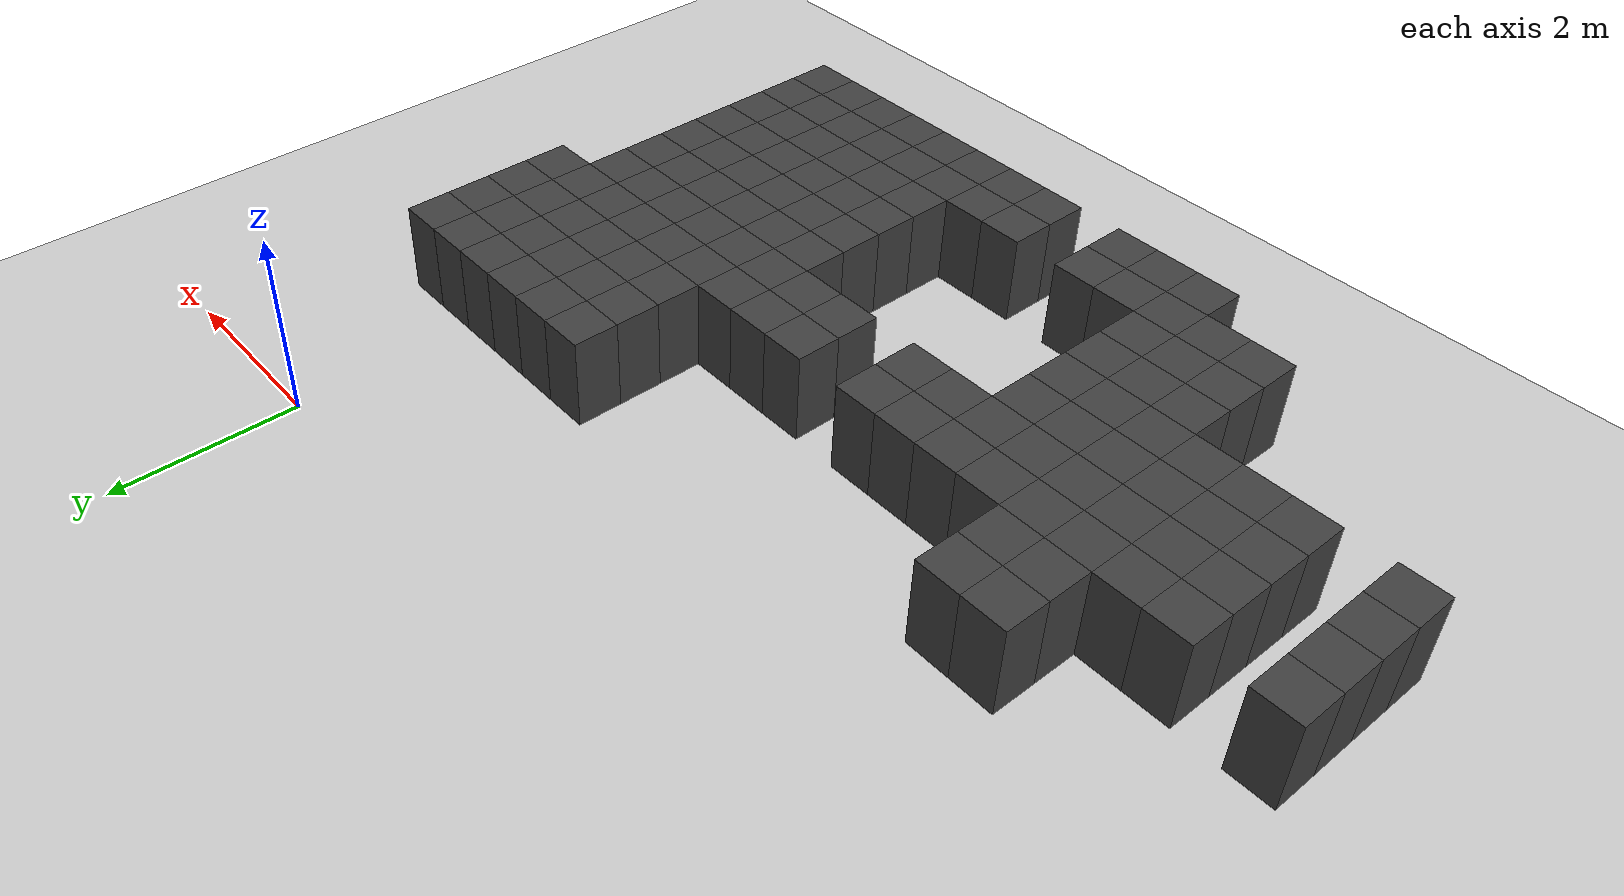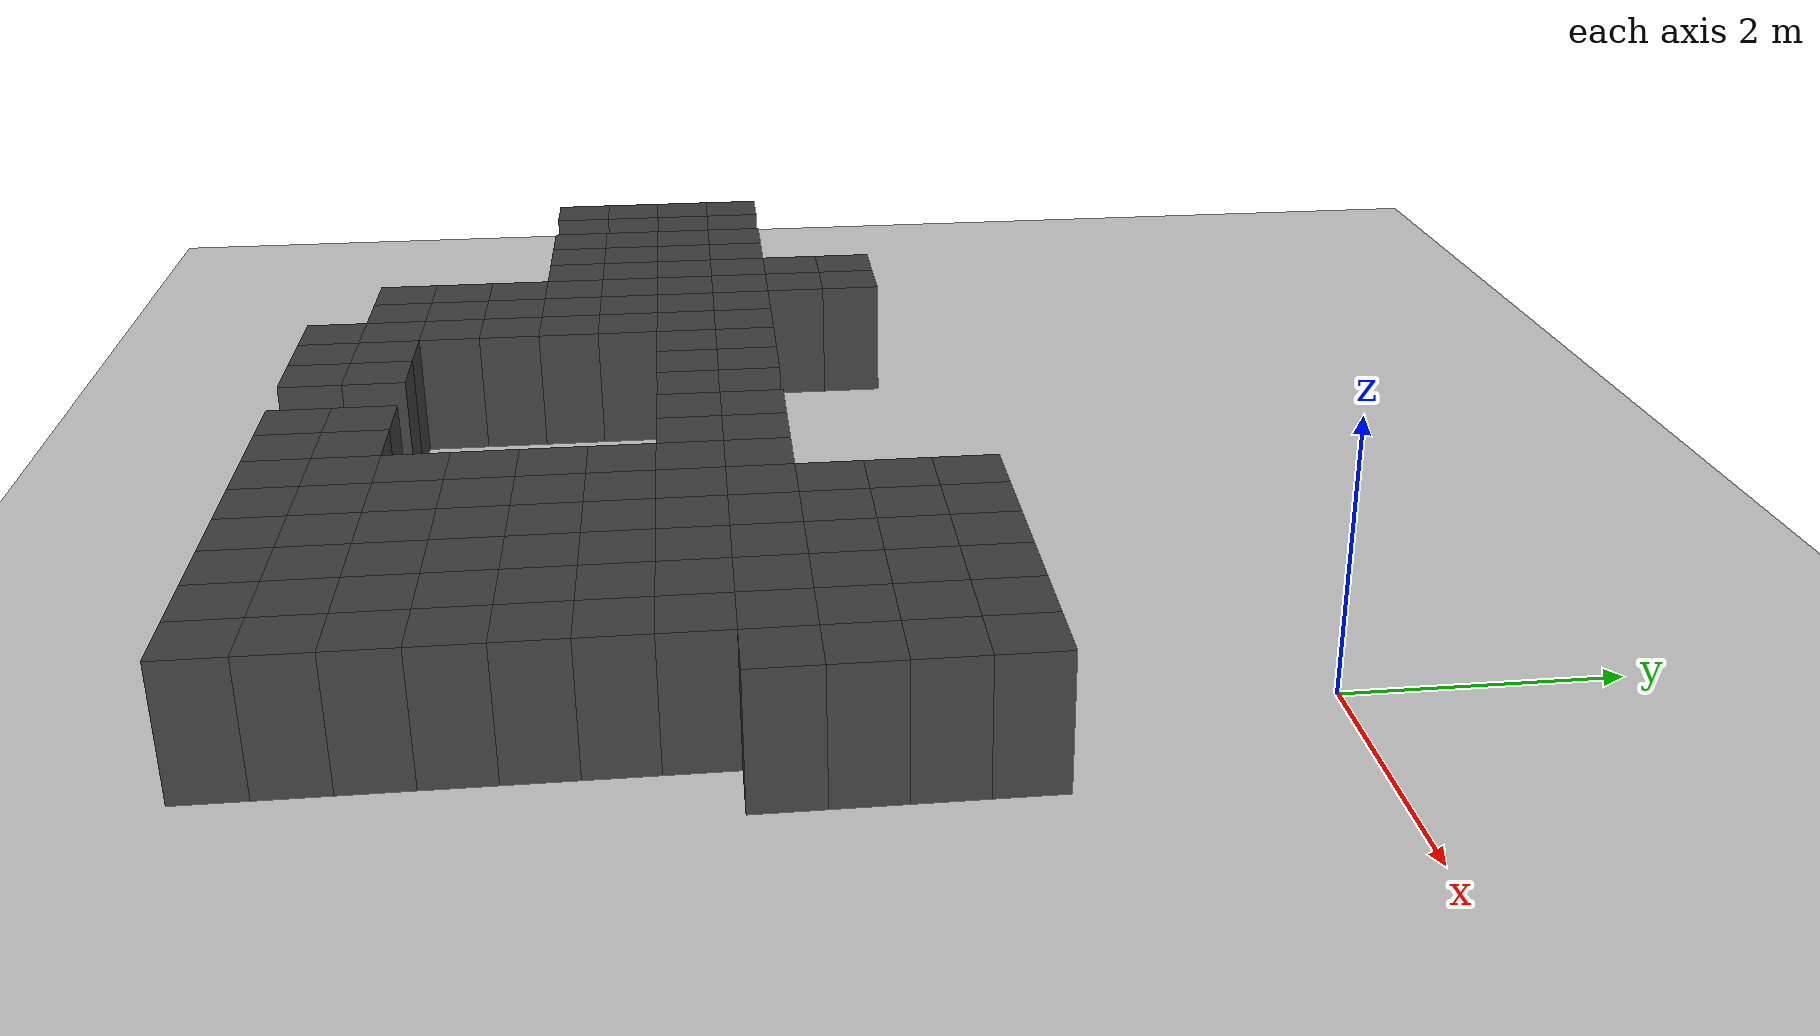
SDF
<sdf version="1.7">
 <world name="map_14495">
  <model name="ground_plane">
   <static>true</static>
   <link name="link">
    <collision name="collision">
     <geometry><plane><normal>0 0 1</normal><size>200 200</size></plane></geometry>
    </collision>
    <visual name="visual">
     <geometry><plane><normal>0 0 1</normal><size>200 200</size></plane></geometry>
     <material><ambient>0.8 0.8 0.8 1</ambient><diffuse>0.8 0.8 0.8 1</diffuse></material>
    </visual>
   </link>
  </model>
  <model name="maze_environment">
   <static>true</static>
   <link name="wall_1051">
    <pose>-1.750 -2.250 0.500 0 0 0</pose>
    <collision name="col"><geometry><box><size>0.5 0.5 1.0</size></box></geometry></collision>
    <visual name="vis">
     <geometry><box><size>0.5 0.5 1.0</size></box></geometry>
     <material><ambient>0.15 0.15 0.15 1</ambient><diffuse>0.25 0.25 0.25 1</diffuse></material>
    </visual>
   </link>
   <link name="wall_1052">
    <pose>-1.250 -2.250 0.500 0 0 0</pose>
    <collision name="col"><geometry><box><size>0.5 0.5 1.0</size></box></geometry></collision>
    <visual name="vis">
     <geometry><box><size>0.5 0.5 1.0</size></box></geometry>
     <material><ambient>0.15 0.15 0.15 1</ambient><diffuse>0.25 0.25 0.25 1</diffuse></material>
    </visual>
   </link>
   <link name="wall_1053">
    <pose>-0.750 -2.250 0.500 0 0 0</pose>
    <collision name="col"><geometry><box><size>0.5 0.5 1.0</size></box></geometry></collision>
    <visual name="vis">
     <geometry><box><size>0.5 0.5 1.0</size></box></geometry>
     <material><ambient>0.15 0.15 0.15 1</ambient><diffuse>0.25 0.25 0.25 1</diffuse></material>
    </visual>
   </link>
   <link name="wall_1054">
    <pose>-0.250 -2.250 0.500 0 0 0</pose>
    <collision name="col"><geometry><box><size>0.5 0.5 1.0</size></box></geometry></collision>
    <visual name="vis">
     <geometry><box><size>0.5 0.5 1.0</size></box></geometry>
     <material><ambient>0.15 0.15 0.15 1</ambient><diffuse>0.25 0.25 0.25 1</diffuse></material>
    </visual>
   </link>
   <link name="wall_1055">
    <pose>0.250 -2.250 0.500 0 0 0</pose>
    <collision name="col"><geometry><box><size>0.5 0.5 1.0</size></box></geometry></collision>
    <visual name="vis">
     <geometry><box><size>0.5 0.5 1.0</size></box></geometry>
     <material><ambient>0.15 0.15 0.15 1</ambient><diffuse>0.25 0.25 0.25 1</diffuse></material>
    </visual>
   </link>
   <link name="wall_1056">
    <pose>0.750 -2.250 0.500 0 0 0</pose>
    <collision name="col"><geometry><box><size>0.5 0.5 1.0</size></box></geometry></collision>
    <visual name="vis">
     <geometry><box><size>0.5 0.5 1.0</size></box></geometry>
     <material><ambient>0.15 0.15 0.15 1</ambient><diffuse>0.25 0.25 0.25 1</diffuse></material>
    </visual>
   </link>
   <link name="wall_1084">
    <pose>-6.750 -2.750 0.500 0 0 0</pose>
    <collision name="col"><geometry><box><size>0.5 0.5 1.0</size></box></geometry></collision>
    <visual name="vis">
     <geometry><box><size>0.5 0.5 1.0</size></box></geometry>
     <material><ambient>0.15 0.15 0.15 1</ambient><diffuse>0.25 0.25 0.25 1</diffuse></material>
    </visual>
   </link>
   <link name="wall_1085">
    <pose>-6.250 -2.750 0.500 0 0 0</pose>
    <collision name="col"><geometry><box><size>0.5 0.5 1.0</size></box></geometry></collision>
    <visual name="vis">
     <geometry><box><size>0.5 0.5 1.0</size></box></geometry>
     <material><ambient>0.15 0.15 0.15 1</ambient><diffuse>0.25 0.25 0.25 1</diffuse></material>
    </visual>
   </link>
   <link name="wall_1086">
    <pose>-1.750 -2.750 0.500 0 0 0</pose>
    <collision name="col"><geometry><box><size>0.5 0.5 1.0</size></box></geometry></collision>
    <visual name="vis">
     <geometry><box><size>0.5 0.5 1.0</size></box></geometry>
     <material><ambient>0.15 0.15 0.15 1</ambient><diffuse>0.25 0.25 0.25 1</diffuse></material>
    </visual>
   </link>
   <link name="wall_1087">
    <pose>-1.250 -2.750 0.500 0 0 0</pose>
    <collision name="col"><geometry><box><size>0.5 0.5 1.0</size></box></geometry></collision>
    <visual name="vis">
     <geometry><box><size>0.5 0.5 1.0</size></box></geometry>
     <material><ambient>0.15 0.15 0.15 1</ambient><diffuse>0.25 0.25 0.25 1</diffuse></material>
    </visual>
   </link>
   <link name="wall_1088">
    <pose>-0.750 -2.750 0.500 0 0 0</pose>
    <collision name="col"><geometry><box><size>0.5 0.5 1.0</size></box></geometry></collision>
    <visual name="vis">
     <geometry><box><size>0.5 0.5 1.0</size></box></geometry>
     <material><ambient>0.15 0.15 0.15 1</ambient><diffuse>0.25 0.25 0.25 1</diffuse></material>
    </visual>
   </link>
   <link name="wall_1089">
    <pose>-0.250 -2.750 0.500 0 0 0</pose>
    <collision name="col"><geometry><box><size>0.5 0.5 1.0</size></box></geometry></collision>
    <visual name="vis">
     <geometry><box><size>0.5 0.5 1.0</size></box></geometry>
     <material><ambient>0.15 0.15 0.15 1</ambient><diffuse>0.25 0.25 0.25 1</diffuse></material>
    </visual>
   </link>
   <link name="wall_1090">
    <pose>0.250 -2.750 0.500 0 0 0</pose>
    <collision name="col"><geometry><box><size>0.5 0.5 1.0</size></box></geometry></collision>
    <visual name="vis">
     <geometry><box><size>0.5 0.5 1.0</size></box></geometry>
     <material><ambient>0.15 0.15 0.15 1</ambient><diffuse>0.25 0.25 0.25 1</diffuse></material>
    </visual>
   </link>
   <link name="wall_1091">
    <pose>0.750 -2.750 0.500 0 0 0</pose>
    <collision name="col"><geometry><box><size>0.5 0.5 1.0</size></box></geometry></collision>
    <visual name="vis">
     <geometry><box><size>0.5 0.5 1.0</size></box></geometry>
     <material><ambient>0.15 0.15 0.15 1</ambient><diffuse>0.25 0.25 0.25 1</diffuse></material>
    </visual>
   </link>
   <link name="wall_1119">
    <pose>-6.750 -3.250 0.500 0 0 0</pose>
    <collision name="col"><geometry><box><size>0.5 0.5 1.0</size></box></geometry></collision>
    <visual name="vis">
     <geometry><box><size>0.5 0.5 1.0</size></box></geometry>
     <material><ambient>0.15 0.15 0.15 1</ambient><diffuse>0.25 0.25 0.25 1</diffuse></material>
    </visual>
   </link>
   <link name="wall_1120">
    <pose>-6.250 -3.250 0.500 0 0 0</pose>
    <collision name="col"><geometry><box><size>0.5 0.5 1.0</size></box></geometry></collision>
    <visual name="vis">
     <geometry><box><size>0.5 0.5 1.0</size></box></geometry>
     <material><ambient>0.15 0.15 0.15 1</ambient><diffuse>0.25 0.25 0.25 1</diffuse></material>
    </visual>
   </link>
   <link name="wall_1121">
    <pose>-1.750 -3.250 0.500 0 0 0</pose>
    <collision name="col"><geometry><box><size>0.5 0.5 1.0</size></box></geometry></collision>
    <visual name="vis">
     <geometry><box><size>0.5 0.5 1.0</size></box></geometry>
     <material><ambient>0.15 0.15 0.15 1</ambient><diffuse>0.25 0.25 0.25 1</diffuse></material>
    </visual>
   </link>
   <link name="wall_1122">
    <pose>-1.250 -3.250 0.500 0 0 0</pose>
    <collision name="col"><geometry><box><size>0.5 0.5 1.0</size></box></geometry></collision>
    <visual name="vis">
     <geometry><box><size>0.5 0.5 1.0</size></box></geometry>
     <material><ambient>0.15 0.15 0.15 1</ambient><diffuse>0.25 0.25 0.25 1</diffuse></material>
    </visual>
   </link>
   <link name="wall_1123">
    <pose>-0.750 -3.250 0.500 0 0 0</pose>
    <collision name="col"><geometry><box><size>0.5 0.5 1.0</size></box></geometry></collision>
    <visual name="vis">
     <geometry><box><size>0.5 0.5 1.0</size></box></geometry>
     <material><ambient>0.15 0.15 0.15 1</ambient><diffuse>0.25 0.25 0.25 1</diffuse></material>
    </visual>
   </link>
   <link name="wall_1124">
    <pose>-0.250 -3.250 0.500 0 0 0</pose>
    <collision name="col"><geometry><box><size>0.5 0.5 1.0</size></box></geometry></collision>
    <visual name="vis">
     <geometry><box><size>0.5 0.5 1.0</size></box></geometry>
     <material><ambient>0.15 0.15 0.15 1</ambient><diffuse>0.25 0.25 0.25 1</diffuse></material>
    </visual>
   </link>
   <link name="wall_1125">
    <pose>0.250 -3.250 0.500 0 0 0</pose>
    <collision name="col"><geometry><box><size>0.5 0.5 1.0</size></box></geometry></collision>
    <visual name="vis">
     <geometry><box><size>0.5 0.5 1.0</size></box></geometry>
     <material><ambient>0.15 0.15 0.15 1</ambient><diffuse>0.25 0.25 0.25 1</diffuse></material>
    </visual>
   </link>
   <link name="wall_1126">
    <pose>0.750 -3.250 0.500 0 0 0</pose>
    <collision name="col"><geometry><box><size>0.5 0.5 1.0</size></box></geometry></collision>
    <visual name="vis">
     <geometry><box><size>0.5 0.5 1.0</size></box></geometry>
     <material><ambient>0.15 0.15 0.15 1</ambient><diffuse>0.25 0.25 0.25 1</diffuse></material>
    </visual>
   </link>
   <link name="wall_1156">
    <pose>-8.750 -3.750 0.500 0 0 0</pose>
    <collision name="col"><geometry><box><size>0.5 0.5 1.0</size></box></geometry></collision>
    <visual name="vis">
     <geometry><box><size>0.5 0.5 1.0</size></box></geometry>
     <material><ambient>0.15 0.15 0.15 1</ambient><diffuse>0.25 0.25 0.25 1</diffuse></material>
    </visual>
   </link>
   <link name="wall_1157">
    <pose>-7.750 -3.750 0.500 0 0 0</pose>
    <collision name="col"><geometry><box><size>0.5 0.5 1.0</size></box></geometry></collision>
    <visual name="vis">
     <geometry><box><size>0.5 0.5 1.0</size></box></geometry>
     <material><ambient>0.15 0.15 0.15 1</ambient><diffuse>0.25 0.25 0.25 1</diffuse></material>
    </visual>
   </link>
   <link name="wall_1158">
    <pose>-7.250 -3.750 0.500 0 0 0</pose>
    <collision name="col"><geometry><box><size>0.5 0.5 1.0</size></box></geometry></collision>
    <visual name="vis">
     <geometry><box><size>0.5 0.5 1.0</size></box></geometry>
     <material><ambient>0.15 0.15 0.15 1</ambient><diffuse>0.25 0.25 0.25 1</diffuse></material>
    </visual>
   </link>
   <link name="wall_1159">
    <pose>-6.750 -3.750 0.500 0 0 0</pose>
    <collision name="col"><geometry><box><size>0.5 0.5 1.0</size></box></geometry></collision>
    <visual name="vis">
     <geometry><box><size>0.5 0.5 1.0</size></box></geometry>
     <material><ambient>0.15 0.15 0.15 1</ambient><diffuse>0.25 0.25 0.25 1</diffuse></material>
    </visual>
   </link>
   <link name="wall_1160">
    <pose>-6.250 -3.750 0.500 0 0 0</pose>
    <collision name="col"><geometry><box><size>0.5 0.5 1.0</size></box></geometry></collision>
    <visual name="vis">
     <geometry><box><size>0.5 0.5 1.0</size></box></geometry>
     <material><ambient>0.15 0.15 0.15 1</ambient><diffuse>0.25 0.25 0.25 1</diffuse></material>
    </visual>
   </link>
   <link name="wall_1161">
    <pose>-5.750 -3.750 0.500 0 0 0</pose>
    <collision name="col"><geometry><box><size>0.5 0.5 1.0</size></box></geometry></collision>
    <visual name="vis">
     <geometry><box><size>0.5 0.5 1.0</size></box></geometry>
     <material><ambient>0.15 0.15 0.15 1</ambient><diffuse>0.25 0.25 0.25 1</diffuse></material>
    </visual>
   </link>
   <link name="wall_1162">
    <pose>-5.250 -3.750 0.500 0 0 0</pose>
    <collision name="col"><geometry><box><size>0.5 0.5 1.0</size></box></geometry></collision>
    <visual name="vis">
     <geometry><box><size>0.5 0.5 1.0</size></box></geometry>
     <material><ambient>0.15 0.15 0.15 1</ambient><diffuse>0.25 0.25 0.25 1</diffuse></material>
    </visual>
   </link>
   <link name="wall_1163">
    <pose>-4.750 -3.750 0.500 0 0 0</pose>
    <collision name="col"><geometry><box><size>0.5 0.5 1.0</size></box></geometry></collision>
    <visual name="vis">
     <geometry><box><size>0.5 0.5 1.0</size></box></geometry>
     <material><ambient>0.15 0.15 0.15 1</ambient><diffuse>0.25 0.25 0.25 1</diffuse></material>
    </visual>
   </link>
   <link name="wall_1164">
    <pose>-4.250 -3.750 0.500 0 0 0</pose>
    <collision name="col"><geometry><box><size>0.5 0.5 1.0</size></box></geometry></collision>
    <visual name="vis">
     <geometry><box><size>0.5 0.5 1.0</size></box></geometry>
     <material><ambient>0.15 0.15 0.15 1</ambient><diffuse>0.25 0.25 0.25 1</diffuse></material>
    </visual>
   </link>
   <link name="wall_1165">
    <pose>-3.250 -3.750 0.500 0 0 0</pose>
    <collision name="col"><geometry><box><size>0.5 0.5 1.0</size></box></geometry></collision>
    <visual name="vis">
     <geometry><box><size>0.5 0.5 1.0</size></box></geometry>
     <material><ambient>0.15 0.15 0.15 1</ambient><diffuse>0.25 0.25 0.25 1</diffuse></material>
    </visual>
   </link>
   <link name="wall_1166">
    <pose>-2.750 -3.750 0.500 0 0 0</pose>
    <collision name="col"><geometry><box><size>0.5 0.5 1.0</size></box></geometry></collision>
    <visual name="vis">
     <geometry><box><size>0.5 0.5 1.0</size></box></geometry>
     <material><ambient>0.15 0.15 0.15 1</ambient><diffuse>0.25 0.25 0.25 1</diffuse></material>
    </visual>
   </link>
   <link name="wall_1167">
    <pose>-2.250 -3.750 0.500 0 0 0</pose>
    <collision name="col"><geometry><box><size>0.5 0.5 1.0</size></box></geometry></collision>
    <visual name="vis">
     <geometry><box><size>0.5 0.5 1.0</size></box></geometry>
     <material><ambient>0.15 0.15 0.15 1</ambient><diffuse>0.25 0.25 0.25 1</diffuse></material>
    </visual>
   </link>
   <link name="wall_1168">
    <pose>-1.750 -3.750 0.500 0 0 0</pose>
    <collision name="col"><geometry><box><size>0.5 0.5 1.0</size></box></geometry></collision>
    <visual name="vis">
     <geometry><box><size>0.5 0.5 1.0</size></box></geometry>
     <material><ambient>0.15 0.15 0.15 1</ambient><diffuse>0.25 0.25 0.25 1</diffuse></material>
    </visual>
   </link>
   <link name="wall_1169">
    <pose>-1.250 -3.750 0.500 0 0 0</pose>
    <collision name="col"><geometry><box><size>0.5 0.5 1.0</size></box></geometry></collision>
    <visual name="vis">
     <geometry><box><size>0.5 0.5 1.0</size></box></geometry>
     <material><ambient>0.15 0.15 0.15 1</ambient><diffuse>0.25 0.25 0.25 1</diffuse></material>
    </visual>
   </link>
   <link name="wall_1170">
    <pose>-0.750 -3.750 0.500 0 0 0</pose>
    <collision name="col"><geometry><box><size>0.5 0.5 1.0</size></box></geometry></collision>
    <visual name="vis">
     <geometry><box><size>0.5 0.5 1.0</size></box></geometry>
     <material><ambient>0.15 0.15 0.15 1</ambient><diffuse>0.25 0.25 0.25 1</diffuse></material>
    </visual>
   </link>
   <link name="wall_1171">
    <pose>-0.250 -3.750 0.500 0 0 0</pose>
    <collision name="col"><geometry><box><size>0.5 0.5 1.0</size></box></geometry></collision>
    <visual name="vis">
     <geometry><box><size>0.5 0.5 1.0</size></box></geometry>
     <material><ambient>0.15 0.15 0.15 1</ambient><diffuse>0.25 0.25 0.25 1</diffuse></material>
    </visual>
   </link>
   <link name="wall_1172">
    <pose>0.250 -3.750 0.500 0 0 0</pose>
    <collision name="col"><geometry><box><size>0.5 0.5 1.0</size></box></geometry></collision>
    <visual name="vis">
     <geometry><box><size>0.5 0.5 1.0</size></box></geometry>
     <material><ambient>0.15 0.15 0.15 1</ambient><diffuse>0.25 0.25 0.25 1</diffuse></material>
    </visual>
   </link>
   <link name="wall_1173">
    <pose>0.750 -3.750 0.500 0 0 0</pose>
    <collision name="col"><geometry><box><size>0.5 0.5 1.0</size></box></geometry></collision>
    <visual name="vis">
     <geometry><box><size>0.5 0.5 1.0</size></box></geometry>
     <material><ambient>0.15 0.15 0.15 1</ambient><diffuse>0.25 0.25 0.25 1</diffuse></material>
    </visual>
   </link>
   <link name="wall_1203">
    <pose>-8.750 -4.250 0.500 0 0 0</pose>
    <collision name="col"><geometry><box><size>0.5 0.5 1.0</size></box></geometry></collision>
    <visual name="vis">
     <geometry><box><size>0.5 0.5 1.0</size></box></geometry>
     <material><ambient>0.15 0.15 0.15 1</ambient><diffuse>0.25 0.25 0.25 1</diffuse></material>
    </visual>
   </link>
   <link name="wall_1204">
    <pose>-7.750 -4.250 0.500 0 0 0</pose>
    <collision name="col"><geometry><box><size>0.5 0.5 1.0</size></box></geometry></collision>
    <visual name="vis">
     <geometry><box><size>0.5 0.5 1.0</size></box></geometry>
     <material><ambient>0.15 0.15 0.15 1</ambient><diffuse>0.25 0.25 0.25 1</diffuse></material>
    </visual>
   </link>
   <link name="wall_1205">
    <pose>-7.250 -4.250 0.500 0 0 0</pose>
    <collision name="col"><geometry><box><size>0.5 0.5 1.0</size></box></geometry></collision>
    <visual name="vis">
     <geometry><box><size>0.5 0.5 1.0</size></box></geometry>
     <material><ambient>0.15 0.15 0.15 1</ambient><diffuse>0.25 0.25 0.25 1</diffuse></material>
    </visual>
   </link>
   <link name="wall_1206">
    <pose>-6.750 -4.250 0.500 0 0 0</pose>
    <collision name="col"><geometry><box><size>0.5 0.5 1.0</size></box></geometry></collision>
    <visual name="vis">
     <geometry><box><size>0.5 0.5 1.0</size></box></geometry>
     <material><ambient>0.15 0.15 0.15 1</ambient><diffuse>0.25 0.25 0.25 1</diffuse></material>
    </visual>
   </link>
   <link name="wall_1207">
    <pose>-6.250 -4.250 0.500 0 0 0</pose>
    <collision name="col"><geometry><box><size>0.5 0.5 1.0</size></box></geometry></collision>
    <visual name="vis">
     <geometry><box><size>0.5 0.5 1.0</size></box></geometry>
     <material><ambient>0.15 0.15 0.15 1</ambient><diffuse>0.25 0.25 0.25 1</diffuse></material>
    </visual>
   </link>
   <link name="wall_1208">
    <pose>-5.750 -4.250 0.500 0 0 0</pose>
    <collision name="col"><geometry><box><size>0.5 0.5 1.0</size></box></geometry></collision>
    <visual name="vis">
     <geometry><box><size>0.5 0.5 1.0</size></box></geometry>
     <material><ambient>0.15 0.15 0.15 1</ambient><diffuse>0.25 0.25 0.25 1</diffuse></material>
    </visual>
   </link>
   <link name="wall_1209">
    <pose>-5.250 -4.250 0.500 0 0 0</pose>
    <collision name="col"><geometry><box><size>0.5 0.5 1.0</size></box></geometry></collision>
    <visual name="vis">
     <geometry><box><size>0.5 0.5 1.0</size></box></geometry>
     <material><ambient>0.15 0.15 0.15 1</ambient><diffuse>0.25 0.25 0.25 1</diffuse></material>
    </visual>
   </link>
   <link name="wall_1210">
    <pose>-4.750 -4.250 0.500 0 0 0</pose>
    <collision name="col"><geometry><box><size>0.5 0.5 1.0</size></box></geometry></collision>
    <visual name="vis">
     <geometry><box><size>0.5 0.5 1.0</size></box></geometry>
     <material><ambient>0.15 0.15 0.15 1</ambient><diffuse>0.25 0.25 0.25 1</diffuse></material>
    </visual>
   </link>
   <link name="wall_1211">
    <pose>-4.250 -4.250 0.500 0 0 0</pose>
    <collision name="col"><geometry><box><size>0.5 0.5 1.0</size></box></geometry></collision>
    <visual name="vis">
     <geometry><box><size>0.5 0.5 1.0</size></box></geometry>
     <material><ambient>0.15 0.15 0.15 1</ambient><diffuse>0.25 0.25 0.25 1</diffuse></material>
    </visual>
   </link>
   <link name="wall_1212">
    <pose>-3.250 -4.250 0.500 0 0 0</pose>
    <collision name="col"><geometry><box><size>0.5 0.5 1.0</size></box></geometry></collision>
    <visual name="vis">
     <geometry><box><size>0.5 0.5 1.0</size></box></geometry>
     <material><ambient>0.15 0.15 0.15 1</ambient><diffuse>0.25 0.25 0.25 1</diffuse></material>
    </visual>
   </link>
   <link name="wall_1213">
    <pose>-2.750 -4.250 0.500 0 0 0</pose>
    <collision name="col"><geometry><box><size>0.5 0.5 1.0</size></box></geometry></collision>
    <visual name="vis">
     <geometry><box><size>0.5 0.5 1.0</size></box></geometry>
     <material><ambient>0.15 0.15 0.15 1</ambient><diffuse>0.25 0.25 0.25 1</diffuse></material>
    </visual>
   </link>
   <link name="wall_1214">
    <pose>-2.250 -4.250 0.500 0 0 0</pose>
    <collision name="col"><geometry><box><size>0.5 0.5 1.0</size></box></geometry></collision>
    <visual name="vis">
     <geometry><box><size>0.5 0.5 1.0</size></box></geometry>
     <material><ambient>0.15 0.15 0.15 1</ambient><diffuse>0.25 0.25 0.25 1</diffuse></material>
    </visual>
   </link>
   <link name="wall_1215">
    <pose>-1.750 -4.250 0.500 0 0 0</pose>
    <collision name="col"><geometry><box><size>0.5 0.5 1.0</size></box></geometry></collision>
    <visual name="vis">
     <geometry><box><size>0.5 0.5 1.0</size></box></geometry>
     <material><ambient>0.15 0.15 0.15 1</ambient><diffuse>0.25 0.25 0.25 1</diffuse></material>
    </visual>
   </link>
   <link name="wall_1216">
    <pose>-1.250 -4.250 0.500 0 0 0</pose>
    <collision name="col"><geometry><box><size>0.5 0.5 1.0</size></box></geometry></collision>
    <visual name="vis">
     <geometry><box><size>0.5 0.5 1.0</size></box></geometry>
     <material><ambient>0.15 0.15 0.15 1</ambient><diffuse>0.25 0.25 0.25 1</diffuse></material>
    </visual>
   </link>
   <link name="wall_1217">
    <pose>-0.750 -4.250 0.500 0 0 0</pose>
    <collision name="col"><geometry><box><size>0.5 0.5 1.0</size></box></geometry></collision>
    <visual name="vis">
     <geometry><box><size>0.5 0.5 1.0</size></box></geometry>
     <material><ambient>0.15 0.15 0.15 1</ambient><diffuse>0.25 0.25 0.25 1</diffuse></material>
    </visual>
   </link>
   <link name="wall_1218">
    <pose>-0.250 -4.250 0.500 0 0 0</pose>
    <collision name="col"><geometry><box><size>0.5 0.5 1.0</size></box></geometry></collision>
    <visual name="vis">
     <geometry><box><size>0.5 0.5 1.0</size></box></geometry>
     <material><ambient>0.15 0.15 0.15 1</ambient><diffuse>0.25 0.25 0.25 1</diffuse></material>
    </visual>
   </link>
   <link name="wall_1219">
    <pose>0.250 -4.250 0.500 0 0 0</pose>
    <collision name="col"><geometry><box><size>0.5 0.5 1.0</size></box></geometry></collision>
    <visual name="vis">
     <geometry><box><size>0.5 0.5 1.0</size></box></geometry>
     <material><ambient>0.15 0.15 0.15 1</ambient><diffuse>0.25 0.25 0.25 1</diffuse></material>
    </visual>
   </link>
   <link name="wall_1250">
    <pose>-8.750 -4.750 0.500 0 0 0</pose>
    <collision name="col"><geometry><box><size>0.5 0.5 1.0</size></box></geometry></collision>
    <visual name="vis">
     <geometry><box><size>0.5 0.5 1.0</size></box></geometry>
     <material><ambient>0.15 0.15 0.15 1</ambient><diffuse>0.25 0.25 0.25 1</diffuse></material>
    </visual>
   </link>
   <link name="wall_1251">
    <pose>-7.750 -4.750 0.500 0 0 0</pose>
    <collision name="col"><geometry><box><size>0.5 0.5 1.0</size></box></geometry></collision>
    <visual name="vis">
     <geometry><box><size>0.5 0.5 1.0</size></box></geometry>
     <material><ambient>0.15 0.15 0.15 1</ambient><diffuse>0.25 0.25 0.25 1</diffuse></material>
    </visual>
   </link>
   <link name="wall_1252">
    <pose>-7.250 -4.750 0.500 0 0 0</pose>
    <collision name="col"><geometry><box><size>0.5 0.5 1.0</size></box></geometry></collision>
    <visual name="vis">
     <geometry><box><size>0.5 0.5 1.0</size></box></geometry>
     <material><ambient>0.15 0.15 0.15 1</ambient><diffuse>0.25 0.25 0.25 1</diffuse></material>
    </visual>
   </link>
   <link name="wall_1253">
    <pose>-6.750 -4.750 0.500 0 0 0</pose>
    <collision name="col"><geometry><box><size>0.5 0.5 1.0</size></box></geometry></collision>
    <visual name="vis">
     <geometry><box><size>0.5 0.5 1.0</size></box></geometry>
     <material><ambient>0.15 0.15 0.15 1</ambient><diffuse>0.25 0.25 0.25 1</diffuse></material>
    </visual>
   </link>
   <link name="wall_1254">
    <pose>-6.250 -4.750 0.500 0 0 0</pose>
    <collision name="col"><geometry><box><size>0.5 0.5 1.0</size></box></geometry></collision>
    <visual name="vis">
     <geometry><box><size>0.5 0.5 1.0</size></box></geometry>
     <material><ambient>0.15 0.15 0.15 1</ambient><diffuse>0.25 0.25 0.25 1</diffuse></material>
    </visual>
   </link>
   <link name="wall_1255">
    <pose>-5.750 -4.750 0.500 0 0 0</pose>
    <collision name="col"><geometry><box><size>0.5 0.5 1.0</size></box></geometry></collision>
    <visual name="vis">
     <geometry><box><size>0.5 0.5 1.0</size></box></geometry>
     <material><ambient>0.15 0.15 0.15 1</ambient><diffuse>0.25 0.25 0.25 1</diffuse></material>
    </visual>
   </link>
   <link name="wall_1256">
    <pose>-5.250 -4.750 0.500 0 0 0</pose>
    <collision name="col"><geometry><box><size>0.5 0.5 1.0</size></box></geometry></collision>
    <visual name="vis">
     <geometry><box><size>0.5 0.5 1.0</size></box></geometry>
     <material><ambient>0.15 0.15 0.15 1</ambient><diffuse>0.25 0.25 0.25 1</diffuse></material>
    </visual>
   </link>
   <link name="wall_1257">
    <pose>-2.250 -4.750 0.500 0 0 0</pose>
    <collision name="col"><geometry><box><size>0.5 0.5 1.0</size></box></geometry></collision>
    <visual name="vis">
     <geometry><box><size>0.5 0.5 1.0</size></box></geometry>
     <material><ambient>0.15 0.15 0.15 1</ambient><diffuse>0.25 0.25 0.25 1</diffuse></material>
    </visual>
   </link>
   <link name="wall_1258">
    <pose>-1.750 -4.750 0.500 0 0 0</pose>
    <collision name="col"><geometry><box><size>0.5 0.5 1.0</size></box></geometry></collision>
    <visual name="vis">
     <geometry><box><size>0.5 0.5 1.0</size></box></geometry>
     <material><ambient>0.15 0.15 0.15 1</ambient><diffuse>0.25 0.25 0.25 1</diffuse></material>
    </visual>
   </link>
   <link name="wall_1259">
    <pose>-1.250 -4.750 0.500 0 0 0</pose>
    <collision name="col"><geometry><box><size>0.5 0.5 1.0</size></box></geometry></collision>
    <visual name="vis">
     <geometry><box><size>0.5 0.5 1.0</size></box></geometry>
     <material><ambient>0.15 0.15 0.15 1</ambient><diffuse>0.25 0.25 0.25 1</diffuse></material>
    </visual>
   </link>
   <link name="wall_1260">
    <pose>-0.750 -4.750 0.500 0 0 0</pose>
    <collision name="col"><geometry><box><size>0.5 0.5 1.0</size></box></geometry></collision>
    <visual name="vis">
     <geometry><box><size>0.5 0.5 1.0</size></box></geometry>
     <material><ambient>0.15 0.15 0.15 1</ambient><diffuse>0.25 0.25 0.25 1</diffuse></material>
    </visual>
   </link>
   <link name="wall_1261">
    <pose>-0.250 -4.750 0.500 0 0 0</pose>
    <collision name="col"><geometry><box><size>0.5 0.5 1.0</size></box></geometry></collision>
    <visual name="vis">
     <geometry><box><size>0.5 0.5 1.0</size></box></geometry>
     <material><ambient>0.15 0.15 0.15 1</ambient><diffuse>0.25 0.25 0.25 1</diffuse></material>
    </visual>
   </link>
   <link name="wall_1262">
    <pose>0.250 -4.750 0.500 0 0 0</pose>
    <collision name="col"><geometry><box><size>0.5 0.5 1.0</size></box></geometry></collision>
    <visual name="vis">
     <geometry><box><size>0.5 0.5 1.0</size></box></geometry>
     <material><ambient>0.15 0.15 0.15 1</ambient><diffuse>0.25 0.25 0.25 1</diffuse></material>
    </visual>
   </link>
   <link name="wall_1286">
    <pose>-8.750 -5.250 0.500 0 0 0</pose>
    <collision name="col"><geometry><box><size>0.5 0.5 1.0</size></box></geometry></collision>
    <visual name="vis">
     <geometry><box><size>0.5 0.5 1.0</size></box></geometry>
     <material><ambient>0.15 0.15 0.15 1</ambient><diffuse>0.25 0.25 0.25 1</diffuse></material>
    </visual>
   </link>
   <link name="wall_1287">
    <pose>-7.750 -5.250 0.500 0 0 0</pose>
    <collision name="col"><geometry><box><size>0.5 0.5 1.0</size></box></geometry></collision>
    <visual name="vis">
     <geometry><box><size>0.5 0.5 1.0</size></box></geometry>
     <material><ambient>0.15 0.15 0.15 1</ambient><diffuse>0.25 0.25 0.25 1</diffuse></material>
    </visual>
   </link>
   <link name="wall_1288">
    <pose>-7.250 -5.250 0.500 0 0 0</pose>
    <collision name="col"><geometry><box><size>0.5 0.5 1.0</size></box></geometry></collision>
    <visual name="vis">
     <geometry><box><size>0.5 0.5 1.0</size></box></geometry>
     <material><ambient>0.15 0.15 0.15 1</ambient><diffuse>0.25 0.25 0.25 1</diffuse></material>
    </visual>
   </link>
   <link name="wall_1289">
    <pose>-6.750 -5.250 0.500 0 0 0</pose>
    <collision name="col"><geometry><box><size>0.5 0.5 1.0</size></box></geometry></collision>
    <visual name="vis">
     <geometry><box><size>0.5 0.5 1.0</size></box></geometry>
     <material><ambient>0.15 0.15 0.15 1</ambient><diffuse>0.25 0.25 0.25 1</diffuse></material>
    </visual>
   </link>
   <link name="wall_1290">
    <pose>-6.250 -5.250 0.500 0 0 0</pose>
    <collision name="col"><geometry><box><size>0.5 0.5 1.0</size></box></geometry></collision>
    <visual name="vis">
     <geometry><box><size>0.5 0.5 1.0</size></box></geometry>
     <material><ambient>0.15 0.15 0.15 1</ambient><diffuse>0.25 0.25 0.25 1</diffuse></material>
    </visual>
   </link>
   <link name="wall_1291">
    <pose>-5.750 -5.250 0.500 0 0 0</pose>
    <collision name="col"><geometry><box><size>0.5 0.5 1.0</size></box></geometry></collision>
    <visual name="vis">
     <geometry><box><size>0.5 0.5 1.0</size></box></geometry>
     <material><ambient>0.15 0.15 0.15 1</ambient><diffuse>0.25 0.25 0.25 1</diffuse></material>
    </visual>
   </link>
   <link name="wall_1292">
    <pose>-5.250 -5.250 0.500 0 0 0</pose>
    <collision name="col"><geometry><box><size>0.5 0.5 1.0</size></box></geometry></collision>
    <visual name="vis">
     <geometry><box><size>0.5 0.5 1.0</size></box></geometry>
     <material><ambient>0.15 0.15 0.15 1</ambient><diffuse>0.25 0.25 0.25 1</diffuse></material>
    </visual>
   </link>
   <link name="wall_1293">
    <pose>-2.250 -5.250 0.500 0 0 0</pose>
    <collision name="col"><geometry><box><size>0.5 0.5 1.0</size></box></geometry></collision>
    <visual name="vis">
     <geometry><box><size>0.5 0.5 1.0</size></box></geometry>
     <material><ambient>0.15 0.15 0.15 1</ambient><diffuse>0.25 0.25 0.25 1</diffuse></material>
    </visual>
   </link>
   <link name="wall_1294">
    <pose>-1.750 -5.250 0.500 0 0 0</pose>
    <collision name="col"><geometry><box><size>0.5 0.5 1.0</size></box></geometry></collision>
    <visual name="vis">
     <geometry><box><size>0.5 0.5 1.0</size></box></geometry>
     <material><ambient>0.15 0.15 0.15 1</ambient><diffuse>0.25 0.25 0.25 1</diffuse></material>
    </visual>
   </link>
   <link name="wall_1295">
    <pose>-1.250 -5.250 0.500 0 0 0</pose>
    <collision name="col"><geometry><box><size>0.5 0.5 1.0</size></box></geometry></collision>
    <visual name="vis">
     <geometry><box><size>0.5 0.5 1.0</size></box></geometry>
     <material><ambient>0.15 0.15 0.15 1</ambient><diffuse>0.25 0.25 0.25 1</diffuse></material>
    </visual>
   </link>
   <link name="wall_1296">
    <pose>-0.750 -5.250 0.500 0 0 0</pose>
    <collision name="col"><geometry><box><size>0.5 0.5 1.0</size></box></geometry></collision>
    <visual name="vis">
     <geometry><box><size>0.5 0.5 1.0</size></box></geometry>
     <material><ambient>0.15 0.15 0.15 1</ambient><diffuse>0.25 0.25 0.25 1</diffuse></material>
    </visual>
   </link>
   <link name="wall_1297">
    <pose>-0.250 -5.250 0.500 0 0 0</pose>
    <collision name="col"><geometry><box><size>0.5 0.5 1.0</size></box></geometry></collision>
    <visual name="vis">
     <geometry><box><size>0.5 0.5 1.0</size></box></geometry>
     <material><ambient>0.15 0.15 0.15 1</ambient><diffuse>0.25 0.25 0.25 1</diffuse></material>
    </visual>
   </link>
   <link name="wall_1298">
    <pose>0.250 -5.250 0.500 0 0 0</pose>
    <collision name="col"><geometry><box><size>0.5 0.5 1.0</size></box></geometry></collision>
    <visual name="vis">
     <geometry><box><size>0.5 0.5 1.0</size></box></geometry>
     <material><ambient>0.15 0.15 0.15 1</ambient><diffuse>0.25 0.25 0.25 1</diffuse></material>
    </visual>
   </link>
   <link name="wall_1320">
    <pose>-6.250 -5.750 0.500 0 0 0</pose>
    <collision name="col"><geometry><box><size>0.5 0.5 1.0</size></box></geometry></collision>
    <visual name="vis">
     <geometry><box><size>0.5 0.5 1.0</size></box></geometry>
     <material><ambient>0.15 0.15 0.15 1</ambient><diffuse>0.25 0.25 0.25 1</diffuse></material>
    </visual>
   </link>
   <link name="wall_1321">
    <pose>-5.750 -5.750 0.500 0 0 0</pose>
    <collision name="col"><geometry><box><size>0.5 0.5 1.0</size></box></geometry></collision>
    <visual name="vis">
     <geometry><box><size>0.5 0.5 1.0</size></box></geometry>
     <material><ambient>0.15 0.15 0.15 1</ambient><diffuse>0.25 0.25 0.25 1</diffuse></material>
    </visual>
   </link>
   <link name="wall_1322">
    <pose>-5.250 -5.750 0.500 0 0 0</pose>
    <collision name="col"><geometry><box><size>0.5 0.5 1.0</size></box></geometry></collision>
    <visual name="vis">
     <geometry><box><size>0.5 0.5 1.0</size></box></geometry>
     <material><ambient>0.15 0.15 0.15 1</ambient><diffuse>0.25 0.25 0.25 1</diffuse></material>
    </visual>
   </link>
   <link name="wall_1323">
    <pose>-2.250 -5.750 0.500 0 0 0</pose>
    <collision name="col"><geometry><box><size>0.5 0.5 1.0</size></box></geometry></collision>
    <visual name="vis">
     <geometry><box><size>0.5 0.5 1.0</size></box></geometry>
     <material><ambient>0.15 0.15 0.15 1</ambient><diffuse>0.25 0.25 0.25 1</diffuse></material>
    </visual>
   </link>
   <link name="wall_1324">
    <pose>-1.750 -5.750 0.500 0 0 0</pose>
    <collision name="col"><geometry><box><size>0.5 0.5 1.0</size></box></geometry></collision>
    <visual name="vis">
     <geometry><box><size>0.5 0.5 1.0</size></box></geometry>
     <material><ambient>0.15 0.15 0.15 1</ambient><diffuse>0.25 0.25 0.25 1</diffuse></material>
    </visual>
   </link>
   <link name="wall_1325">
    <pose>-1.250 -5.750 0.500 0 0 0</pose>
    <collision name="col"><geometry><box><size>0.5 0.5 1.0</size></box></geometry></collision>
    <visual name="vis">
     <geometry><box><size>0.5 0.5 1.0</size></box></geometry>
     <material><ambient>0.15 0.15 0.15 1</ambient><diffuse>0.25 0.25 0.25 1</diffuse></material>
    </visual>
   </link>
   <link name="wall_1326">
    <pose>-0.750 -5.750 0.500 0 0 0</pose>
    <collision name="col"><geometry><box><size>0.5 0.5 1.0</size></box></geometry></collision>
    <visual name="vis">
     <geometry><box><size>0.5 0.5 1.0</size></box></geometry>
     <material><ambient>0.15 0.15 0.15 1</ambient><diffuse>0.25 0.25 0.25 1</diffuse></material>
    </visual>
   </link>
   <link name="wall_1327">
    <pose>-0.250 -5.750 0.500 0 0 0</pose>
    <collision name="col"><geometry><box><size>0.5 0.5 1.0</size></box></geometry></collision>
    <visual name="vis">
     <geometry><box><size>0.5 0.5 1.0</size></box></geometry>
     <material><ambient>0.15 0.15 0.15 1</ambient><diffuse>0.25 0.25 0.25 1</diffuse></material>
    </visual>
   </link>
   <link name="wall_1328">
    <pose>0.250 -5.750 0.500 0 0 0</pose>
    <collision name="col"><geometry><box><size>0.5 0.5 1.0</size></box></geometry></collision>
    <visual name="vis">
     <geometry><box><size>0.5 0.5 1.0</size></box></geometry>
     <material><ambient>0.15 0.15 0.15 1</ambient><diffuse>0.25 0.25 0.25 1</diffuse></material>
    </visual>
   </link>
   <link name="wall_1344">
    <pose>-6.250 -6.250 0.500 0 0 0</pose>
    <collision name="col"><geometry><box><size>0.5 0.5 1.0</size></box></geometry></collision>
    <visual name="vis">
     <geometry><box><size>0.5 0.5 1.0</size></box></geometry>
     <material><ambient>0.15 0.15 0.15 1</ambient><diffuse>0.25 0.25 0.25 1</diffuse></material>
    </visual>
   </link>
   <link name="wall_1345">
    <pose>-5.750 -6.250 0.500 0 0 0</pose>
    <collision name="col"><geometry><box><size>0.5 0.5 1.0</size></box></geometry></collision>
    <visual name="vis">
     <geometry><box><size>0.5 0.5 1.0</size></box></geometry>
     <material><ambient>0.15 0.15 0.15 1</ambient><diffuse>0.25 0.25 0.25 1</diffuse></material>
    </visual>
   </link>
   <link name="wall_1346">
    <pose>-5.250 -6.250 0.500 0 0 0</pose>
    <collision name="col"><geometry><box><size>0.5 0.5 1.0</size></box></geometry></collision>
    <visual name="vis">
     <geometry><box><size>0.5 0.5 1.0</size></box></geometry>
     <material><ambient>0.15 0.15 0.15 1</ambient><diffuse>0.25 0.25 0.25 1</diffuse></material>
    </visual>
   </link>
   <link name="wall_1347">
    <pose>-2.250 -6.250 0.500 0 0 0</pose>
    <collision name="col"><geometry><box><size>0.5 0.5 1.0</size></box></geometry></collision>
    <visual name="vis">
     <geometry><box><size>0.5 0.5 1.0</size></box></geometry>
     <material><ambient>0.15 0.15 0.15 1</ambient><diffuse>0.25 0.25 0.25 1</diffuse></material>
    </visual>
   </link>
   <link name="wall_1348">
    <pose>-1.750 -6.250 0.500 0 0 0</pose>
    <collision name="col"><geometry><box><size>0.5 0.5 1.0</size></box></geometry></collision>
    <visual name="vis">
     <geometry><box><size>0.5 0.5 1.0</size></box></geometry>
     <material><ambient>0.15 0.15 0.15 1</ambient><diffuse>0.25 0.25 0.25 1</diffuse></material>
    </visual>
   </link>
   <link name="wall_1349">
    <pose>-1.250 -6.250 0.500 0 0 0</pose>
    <collision name="col"><geometry><box><size>0.5 0.5 1.0</size></box></geometry></collision>
    <visual name="vis">
     <geometry><box><size>0.5 0.5 1.0</size></box></geometry>
     <material><ambient>0.15 0.15 0.15 1</ambient><diffuse>0.25 0.25 0.25 1</diffuse></material>
    </visual>
   </link>
   <link name="wall_1350">
    <pose>-0.750 -6.250 0.500 0 0 0</pose>
    <collision name="col"><geometry><box><size>0.5 0.5 1.0</size></box></geometry></collision>
    <visual name="vis">
     <geometry><box><size>0.5 0.5 1.0</size></box></geometry>
     <material><ambient>0.15 0.15 0.15 1</ambient><diffuse>0.25 0.25 0.25 1</diffuse></material>
    </visual>
   </link>
   <link name="wall_1351">
    <pose>-0.250 -6.250 0.500 0 0 0</pose>
    <collision name="col"><geometry><box><size>0.5 0.5 1.0</size></box></geometry></collision>
    <visual name="vis">
     <geometry><box><size>0.5 0.5 1.0</size></box></geometry>
     <material><ambient>0.15 0.15 0.15 1</ambient><diffuse>0.25 0.25 0.25 1</diffuse></material>
    </visual>
   </link>
   <link name="wall_1352">
    <pose>0.250 -6.250 0.500 0 0 0</pose>
    <collision name="col"><geometry><box><size>0.5 0.5 1.0</size></box></geometry></collision>
    <visual name="vis">
     <geometry><box><size>0.5 0.5 1.0</size></box></geometry>
     <material><ambient>0.15 0.15 0.15 1</ambient><diffuse>0.25 0.25 0.25 1</diffuse></material>
    </visual>
   </link>
   <link name="wall_1366">
    <pose>-6.250 -6.750 0.500 0 0 0</pose>
    <collision name="col"><geometry><box><size>0.5 0.5 1.0</size></box></geometry></collision>
    <visual name="vis">
     <geometry><box><size>0.5 0.5 1.0</size></box></geometry>
     <material><ambient>0.15 0.15 0.15 1</ambient><diffuse>0.25 0.25 0.25 1</diffuse></material>
    </visual>
   </link>
   <link name="wall_1367">
    <pose>-5.750 -6.750 0.500 0 0 0</pose>
    <collision name="col"><geometry><box><size>0.5 0.5 1.0</size></box></geometry></collision>
    <visual name="vis">
     <geometry><box><size>0.5 0.5 1.0</size></box></geometry>
     <material><ambient>0.15 0.15 0.15 1</ambient><diffuse>0.25 0.25 0.25 1</diffuse></material>
    </visual>
   </link>
   <link name="wall_1368">
    <pose>-5.250 -6.750 0.500 0 0 0</pose>
    <collision name="col"><geometry><box><size>0.5 0.5 1.0</size></box></geometry></collision>
    <visual name="vis">
     <geometry><box><size>0.5 0.5 1.0</size></box></geometry>
     <material><ambient>0.15 0.15 0.15 1</ambient><diffuse>0.25 0.25 0.25 1</diffuse></material>
    </visual>
   </link>
   <link name="wall_1369">
    <pose>-4.750 -6.750 0.500 0 0 0</pose>
    <collision name="col"><geometry><box><size>0.5 0.5 1.0</size></box></geometry></collision>
    <visual name="vis">
     <geometry><box><size>0.5 0.5 1.0</size></box></geometry>
     <material><ambient>0.15 0.15 0.15 1</ambient><diffuse>0.25 0.25 0.25 1</diffuse></material>
    </visual>
   </link>
   <link name="wall_1370">
    <pose>-4.250 -6.750 0.500 0 0 0</pose>
    <collision name="col"><geometry><box><size>0.5 0.5 1.0</size></box></geometry></collision>
    <visual name="vis">
     <geometry><box><size>0.5 0.5 1.0</size></box></geometry>
     <material><ambient>0.15 0.15 0.15 1</ambient><diffuse>0.25 0.25 0.25 1</diffuse></material>
    </visual>
   </link>
   <link name="wall_1371">
    <pose>-3.250 -6.750 0.500 0 0 0</pose>
    <collision name="col"><geometry><box><size>0.5 0.5 1.0</size></box></geometry></collision>
    <visual name="vis">
     <geometry><box><size>0.5 0.5 1.0</size></box></geometry>
     <material><ambient>0.15 0.15 0.15 1</ambient><diffuse>0.25 0.25 0.25 1</diffuse></material>
    </visual>
   </link>
   <link name="wall_1372">
    <pose>-2.750 -6.750 0.500 0 0 0</pose>
    <collision name="col"><geometry><box><size>0.5 0.5 1.0</size></box></geometry></collision>
    <visual name="vis">
     <geometry><box><size>0.5 0.5 1.0</size></box></geometry>
     <material><ambient>0.15 0.15 0.15 1</ambient><diffuse>0.25 0.25 0.25 1</diffuse></material>
    </visual>
   </link>
   <link name="wall_1373">
    <pose>-2.250 -6.750 0.500 0 0 0</pose>
    <collision name="col"><geometry><box><size>0.5 0.5 1.0</size></box></geometry></collision>
    <visual name="vis">
     <geometry><box><size>0.5 0.5 1.0</size></box></geometry>
     <material><ambient>0.15 0.15 0.15 1</ambient><diffuse>0.25 0.25 0.25 1</diffuse></material>
    </visual>
   </link>
   <link name="wall_1374">
    <pose>-1.750 -6.750 0.500 0 0 0</pose>
    <collision name="col"><geometry><box><size>0.5 0.5 1.0</size></box></geometry></collision>
    <visual name="vis">
     <geometry><box><size>0.5 0.5 1.0</size></box></geometry>
     <material><ambient>0.15 0.15 0.15 1</ambient><diffuse>0.25 0.25 0.25 1</diffuse></material>
    </visual>
   </link>
   <link name="wall_1375">
    <pose>-1.250 -6.750 0.500 0 0 0</pose>
    <collision name="col"><geometry><box><size>0.5 0.5 1.0</size></box></geometry></collision>
    <visual name="vis">
     <geometry><box><size>0.5 0.5 1.0</size></box></geometry>
     <material><ambient>0.15 0.15 0.15 1</ambient><diffuse>0.25 0.25 0.25 1</diffuse></material>
    </visual>
   </link>
   <link name="wall_1376">
    <pose>-0.750 -6.750 0.500 0 0 0</pose>
    <collision name="col"><geometry><box><size>0.5 0.5 1.0</size></box></geometry></collision>
    <visual name="vis">
     <geometry><box><size>0.5 0.5 1.0</size></box></geometry>
     <material><ambient>0.15 0.15 0.15 1</ambient><diffuse>0.25 0.25 0.25 1</diffuse></material>
    </visual>
   </link>
   <link name="wall_1377">
    <pose>-0.250 -6.750 0.500 0 0 0</pose>
    <collision name="col"><geometry><box><size>0.5 0.5 1.0</size></box></geometry></collision>
    <visual name="vis">
     <geometry><box><size>0.5 0.5 1.0</size></box></geometry>
     <material><ambient>0.15 0.15 0.15 1</ambient><diffuse>0.25 0.25 0.25 1</diffuse></material>
    </visual>
   </link>
   <link name="wall_1378">
    <pose>0.250 -6.750 0.500 0 0 0</pose>
    <collision name="col"><geometry><box><size>0.5 0.5 1.0</size></box></geometry></collision>
    <visual name="vis">
     <geometry><box><size>0.5 0.5 1.0</size></box></geometry>
     <material><ambient>0.15 0.15 0.15 1</ambient><diffuse>0.25 0.25 0.25 1</diffuse></material>
    </visual>
   </link>
   <link name="wall_1394">
    <pose>-5.250 -7.250 0.500 0 0 0</pose>
    <collision name="col"><geometry><box><size>0.5 0.5 1.0</size></box></geometry></collision>
    <visual name="vis">
     <geometry><box><size>0.5 0.5 1.0</size></box></geometry>
     <material><ambient>0.15 0.15 0.15 1</ambient><diffuse>0.25 0.25 0.25 1</diffuse></material>
    </visual>
   </link>
   <link name="wall_1395">
    <pose>-4.750 -7.250 0.500 0 0 0</pose>
    <collision name="col"><geometry><box><size>0.5 0.5 1.0</size></box></geometry></collision>
    <visual name="vis">
     <geometry><box><size>0.5 0.5 1.0</size></box></geometry>
     <material><ambient>0.15 0.15 0.15 1</ambient><diffuse>0.25 0.25 0.25 1</diffuse></material>
    </visual>
   </link>
   <link name="wall_1396">
    <pose>-4.250 -7.250 0.500 0 0 0</pose>
    <collision name="col"><geometry><box><size>0.5 0.5 1.0</size></box></geometry></collision>
    <visual name="vis">
     <geometry><box><size>0.5 0.5 1.0</size></box></geometry>
     <material><ambient>0.15 0.15 0.15 1</ambient><diffuse>0.25 0.25 0.25 1</diffuse></material>
    </visual>
   </link>
   <link name="wall_1397">
    <pose>-3.250 -7.250 0.500 0 0 0</pose>
    <collision name="col"><geometry><box><size>0.5 0.5 1.0</size></box></geometry></collision>
    <visual name="vis">
     <geometry><box><size>0.5 0.5 1.0</size></box></geometry>
     <material><ambient>0.15 0.15 0.15 1</ambient><diffuse>0.25 0.25 0.25 1</diffuse></material>
    </visual>
   </link>
   <link name="wall_1398">
    <pose>-2.750 -7.250 0.500 0 0 0</pose>
    <collision name="col"><geometry><box><size>0.5 0.5 1.0</size></box></geometry></collision>
    <visual name="vis">
     <geometry><box><size>0.5 0.5 1.0</size></box></geometry>
     <material><ambient>0.15 0.15 0.15 1</ambient><diffuse>0.25 0.25 0.25 1</diffuse></material>
    </visual>
   </link>
   <link name="wall_1399">
    <pose>-2.250 -7.250 0.500 0 0 0</pose>
    <collision name="col"><geometry><box><size>0.5 0.5 1.0</size></box></geometry></collision>
    <visual name="vis">
     <geometry><box><size>0.5 0.5 1.0</size></box></geometry>
     <material><ambient>0.15 0.15 0.15 1</ambient><diffuse>0.25 0.25 0.25 1</diffuse></material>
    </visual>
   </link>
   <link name="wall_1400">
    <pose>-1.750 -7.250 0.500 0 0 0</pose>
    <collision name="col"><geometry><box><size>0.5 0.5 1.0</size></box></geometry></collision>
    <visual name="vis">
     <geometry><box><size>0.5 0.5 1.0</size></box></geometry>
     <material><ambient>0.15 0.15 0.15 1</ambient><diffuse>0.25 0.25 0.25 1</diffuse></material>
    </visual>
   </link>
   <link name="wall_1401">
    <pose>-1.250 -7.250 0.500 0 0 0</pose>
    <collision name="col"><geometry><box><size>0.5 0.5 1.0</size></box></geometry></collision>
    <visual name="vis">
     <geometry><box><size>0.5 0.5 1.0</size></box></geometry>
     <material><ambient>0.15 0.15 0.15 1</ambient><diffuse>0.25 0.25 0.25 1</diffuse></material>
    </visual>
   </link>
   <link name="wall_1402">
    <pose>-0.750 -7.250 0.500 0 0 0</pose>
    <collision name="col"><geometry><box><size>0.5 0.5 1.0</size></box></geometry></collision>
    <visual name="vis">
     <geometry><box><size>0.5 0.5 1.0</size></box></geometry>
     <material><ambient>0.15 0.15 0.15 1</ambient><diffuse>0.25 0.25 0.25 1</diffuse></material>
    </visual>
   </link>
   <link name="wall_1403">
    <pose>-0.250 -7.250 0.500 0 0 0</pose>
    <collision name="col"><geometry><box><size>0.5 0.5 1.0</size></box></geometry></collision>
    <visual name="vis">
     <geometry><box><size>0.5 0.5 1.0</size></box></geometry>
     <material><ambient>0.15 0.15 0.15 1</ambient><diffuse>0.25 0.25 0.25 1</diffuse></material>
    </visual>
   </link>
   <link name="wall_1404">
    <pose>0.250 -7.250 0.500 0 0 0</pose>
    <collision name="col"><geometry><box><size>0.5 0.5 1.0</size></box></geometry></collision>
    <visual name="vis">
     <geometry><box><size>0.5 0.5 1.0</size></box></geometry>
     <material><ambient>0.15 0.15 0.15 1</ambient><diffuse>0.25 0.25 0.25 1</diffuse></material>
    </visual>
   </link>
  </model>
 </world>
</sdf>
